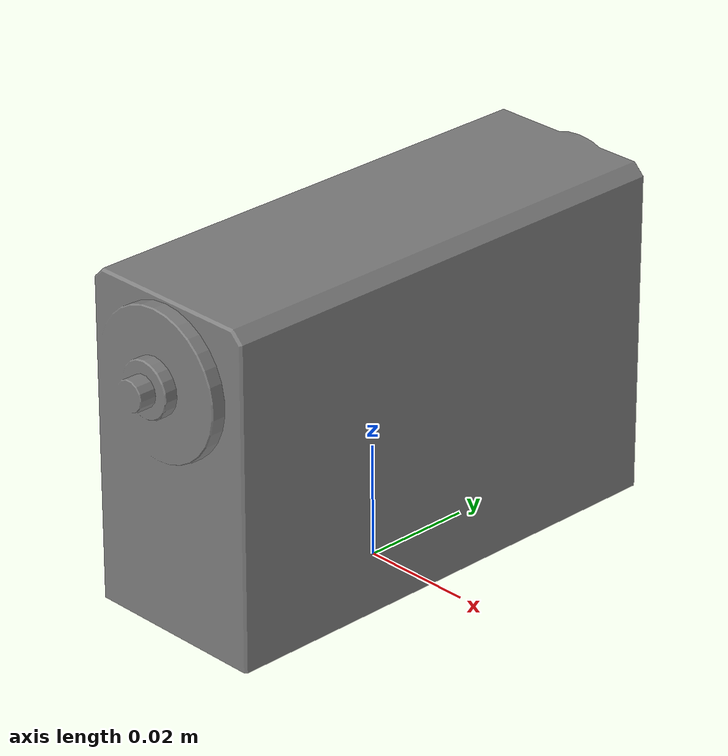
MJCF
<mujoco model="aloha_shoulder">
    <compiler angle="radian" meshdir="assets" autolimits="true" />

    <asset>
        <mesh file="vx300s_2_shoulder_motor_only.stl" scale="1 1 1" />
    </asset>

    <default>
        <default class="vx300s">
            <joint axis="0 1 0" actuatorfrcrange="-35 35" actuatorgravcomp="true" />
            <!-- group 4 means not a tracking site -->
            <site group="4" />
            <default class="waist">
                <position ctrlrange="-3.14158 3.14158" kp="43" forcerange="-35 35" />
            </default>
            <default class="visual">
                <geom type="mesh" mass="0" group="2" contype="0" conaffinity="0" />
            </default>
            <default class="collision">
                <geom group="3" type="mesh" condim="6" friction="1 5e-3 5e-4" solref=".01 1" />
            </default>
        </default>
    </default>

    <worldbody>
        <body name="shoulder_link" childclass="vx300s">
            <joint name="waist" axis="0 0 1" range="-3.14158 3.14158" damping="5.76" />
            <geom pos="0 0 -0.003" quat="1 0 0 1" class="visual" mesh="vx300s_2_shoulder_motor_only"
                name="shoulder_motor_visual" />
            <geom pos="0.0005 0 0.032" rgba='1 0 0 1' type="box" size="0.016 0.044 0.029"
                class="collision" mass="0.798614" name="shoulder_motor_collision" />
            <site name="upper_arm_mount" pos="0 0 0.04805" />
        </body>
    </worldbody>

    <custom>

        <tuple name="actuators">
            <element objtype="joint" objname="waist" />
        </tuple>
    </custom>

</mujoco>
